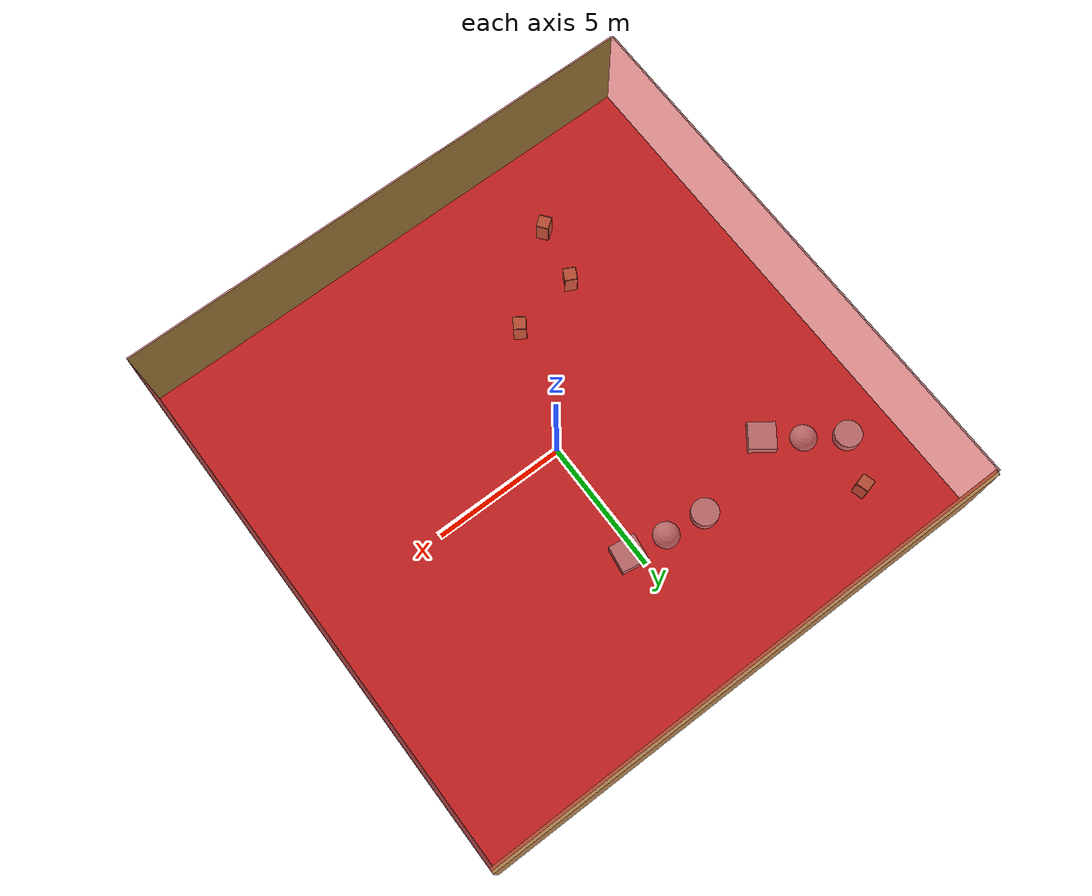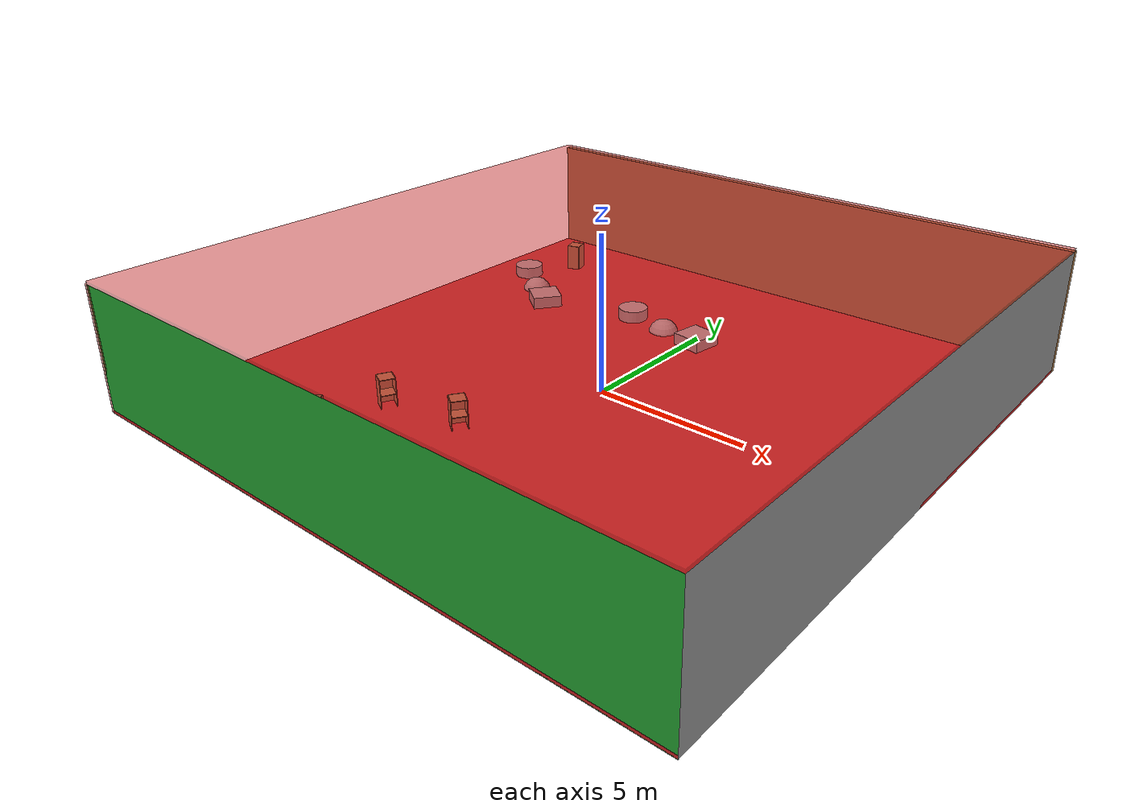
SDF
<sdf version="1.4">
 <world name="default">
  <physics type="ode">
   <max_step_size>0.001</max_step_size>
   <real_time_factor>1</real_time_factor>
   <real_time_update_rate>1000</real_time_update_rate>
   <gravity>0 0 -9.8</gravity>
  </physics>
  <scene><ambient>0.4 0.4 0.4 1</ambient><background>0.7 0.7 0.7 1</background><shadows>1</shadows></scene>
  <model name="Surrounding">
   <static>1</static>
   <link name="Ceiling">
    <collision name="Ceiling_Collision"><geometry><box><size>20 20 0.1</size></box></geometry></collision>
    <visual name="Ceiling_Visual">
     <geometry><box><size>20 20 0.1</size></box></geometry>
     <material>
      <script><uri>file://media/materials/scripts/gazebo.material</uri><name>Gazebo/RedTransparent</name></script>
     </material>
    </visual>
    <pose>0 0 4.05 0 0 0</pose>
   </link>
   <link name="Wall_South">
    <collision name="Wall_South_Collision">
     <geometry><box><size>20 0 4</size></box></geometry>
     <pose>0 0 2 0 -0 0</pose>
    </collision>
    <visual name="Wall_South_Visual">
     <pose>0 0 2 0 -0 0</pose>
     <geometry><box><size>20 0 4</size></box></geometry>
     <material>
      <script><uri>file://media/materials/scripts/gazebo.material</uri><name>Gazebo/Green</name></script>
     </material>
    </visual>
    <velocity_decay><linear>0</linear><angular>0</angular></velocity_decay>
    <pose>0 -10 0 0 -0 0</pose>
   </link>
   <link name="Wall_East">
    <collision name="Wall_21_Collision">
     <geometry><box><size>20 0 4</size></box></geometry>
     <pose>0 0 2 0 -0 0</pose>
    </collision>
    <visual name="Wall_21_Visual">
     <pose>0 0 2 0 -0 0</pose>
     <geometry><box><size>20 0 4</size></box></geometry>
     <material>
      <script><uri>file://media/materials/scripts/gazebo.material</uri><name>Gazebo/Grey</name></script>
     </material>
    </visual>
    <velocity_decay><linear>0</linear><angular>0</angular></velocity_decay>
    <pose>10 0 0 0 -0 1.5708</pose>
   </link>
   <link name="Wall_North">
    <collision name="Wall_22_Collision">
     <geometry><box><size>20 0.2 4</size></box></geometry>
     <pose>0 0 2 0 -0 0</pose>
    </collision>
    <visual name="Wall_22_Visual">
     <pose>0 0 2 0 -0 0</pose>
     <geometry><box><size>20 0.2 4</size></box></geometry>
     <material>
      <script><uri>file://media/materials/scripts/gazebo.material</uri><name>Gazebo/WoodFloor</name></script>
     </material>
    </visual>
    <velocity_decay><linear>0</linear><angular>0</angular></velocity_decay>
    <pose>0 10 0 0 -0 0</pose>
   </link>
   <link name="Wall_West">
    <collision name="Wall_23_Collision">
     <geometry><box><size>20 0.2 4</size></box></geometry>
     <pose>0 0 2 0 -0 0</pose>
    </collision>
    <visual name="Wall_23_Visual">
     <pose>0 0 2 0 -0 0</pose>
     <geometry><box><size>20 0.2 4</size></box></geometry>
     <material>
      <script><uri>file://media/materials/scripts/gazebo.material</uri><name>Gazebo/RedTransparent</name></script>
     </material>
    </visual>
    <velocity_decay><linear>0</linear><angular>0</angular></velocity_decay>
    <pose>-10 0 0 0 0 -1.5708</pose>
   </link>
   <link name="Ground_link">
    <collision name="collision">
     <pose>0 0 .05 0 -0 0</pose>
     <geometry><box><size>20 20 0.1</size></box></geometry>
    </collision>
    <visual name="visual">
     <pose>0 0 .05 0 -0 0</pose>
     <geometry><box><size>20 20 0.1</size></box></geometry>
     <material>
      <script><uri>file://media/materials/scripts/gazebo.material</uri><name>Gazebo/RedGlow</name></script>
     </material>
    </visual>
   </link>
   <static>1</static>
  </model>
  <spherical_coordinates>
   <surface_model>EARTH_WGS84</surface_model>
   <latitude_deg>0</latitude_deg>
   <longitude_deg>0</longitude_deg>
   <elevation>0</elevation>
   <heading_deg>0</heading_deg>
  </spherical_coordinates>
  <light name="lightball_0" type="diffuse">
   <diffuse>0.8 0.8 0.8 1</diffuse>
   <specular>0.2 0.2 0.2 1</specular>
   <attenuation>
    <range>100</range>
    <constant>0.7</constant>
    <linear>0.01</linear>
    <quadratic>0.001</quadratic>
   </attenuation>
   <direction>-0.5 0.1 -0.9</direction>
   <pose>-8.06985148232 -4.03108906985 2.2408728219 0 0 0</pose>
  </light>
  <light name="lightball_1" type="diffuse">
   <diffuse>0.8 0.8 0.8 1</diffuse>
   <specular>0.2 0.2 0.2 1</specular>
   <attenuation>
    <range>100</range>
    <constant>0.7</constant>
    <linear>0.01</linear>
    <quadratic>0.001</quadratic>
   </attenuation>
   <direction>-0.5 0.1 -0.9</direction>
   <pose>4.38856634447 -3.99168389174 0.652357481037 0 0 0</pose>
  </light>
  <light name="lightball_2" type="diffuse">
   <diffuse>0.8 0.8 0.8 1</diffuse>
   <specular>0.2 0.2 0.2 1</specular>
   <attenuation>
    <range>100</range>
    <constant>0.7</constant>
    <linear>0.01</linear>
    <quadratic>0.001</quadratic>
   </attenuation>
   <direction>-0.5 0.1 -0.9</direction>
   <pose>-3.07319081487 9.68539336132 3.32386929371 0 0 0</pose>
  </light>
  <light name="lightball_3" type="diffuse">
   <diffuse>0.8 0.8 0.8 1</diffuse>
   <specular>0.2 0.2 0.2 1</specular>
   <attenuation>
    <range>100</range>
    <constant>0.7</constant>
    <linear>0.01</linear>
    <quadratic>0.001</quadratic>
   </attenuation>
   <direction>-0.5 0.1 -0.9</direction>
   <pose>6.09154039395 -6.8066000034 2.95643699589 0 0 0</pose>
  </light>
  <light name="lightball_4" type="diffuse">
   <diffuse>0.8 0.8 0.8 1</diffuse>
   <specular>0.2 0.2 0.2 1</specular>
   <attenuation>
    <range>100</range>
    <constant>0.7</constant>
    <linear>0.01</linear>
    <quadratic>0.001</quadratic>
   </attenuation>
   <direction>-0.5 0.1 -0.9</direction>
   <pose>-0.249373880013 4.56755238383 0.748091088129 0 0 0</pose>
  </light>
  <light name="lightball_5" type="diffuse">
   <diffuse>0.8 0.8 0.8 1</diffuse>
   <specular>0.2 0.2 0.2 1</specular>
   <attenuation>
    <range>100</range>
    <constant>0.7</constant>
    <linear>0.01</linear>
    <quadratic>0.001</quadratic>
   </attenuation>
   <direction>-0.5 0.1 -0.9</direction>
   <pose>9.76061568107 -7.15803264335 2.80126953264 0 0 0</pose>
  </light>
  <light name="lightball_6" type="diffuse">
   <diffuse>0.8 0.8 0.8 1</diffuse>
   <specular>0.2 0.2 0.2 1</specular>
   <attenuation>
    <range>100</range>
    <constant>0.7</constant>
    <linear>0.01</linear>
    <quadratic>0.001</quadratic>
   </attenuation>
   <direction>-0.5 0.1 -0.9</direction>
   <pose>-5.32067851212 8.74656347826 1.94856631638 0 0 0</pose>
  </light>
  <light name="lightball_7" type="diffuse">
   <diffuse>0.8 0.8 0.8 1</diffuse>
   <specular>0.2 0.2 0.2 1</specular>
   <attenuation>
    <range>100</range>
    <constant>0.7</constant>
    <linear>0.01</linear>
    <quadratic>0.001</quadratic>
   </attenuation>
   <direction>-0.5 0.1 -0.9</direction>
   <pose>5.08950214632 -6.06908594574 2.13806502914 0 0 0</pose>
  </light>
  <light name="lightball_8" type="diffuse">
   <diffuse>0.8 0.8 0.8 1</diffuse>
   <specular>0.2 0.2 0.2 1</specular>
   <attenuation>
    <range>100</range>
    <constant>0.7</constant>
    <linear>0.01</linear>
    <quadratic>0.001</quadratic>
   </attenuation>
   <direction>-0.5 0.1 -0.9</direction>
   <pose>-1.20805903128 -2.09701097918 0.550583263191 0 0 0</pose>
  </light>
  <light name="lightball_9" type="diffuse">
   <diffuse>0.8 0.8 0.8 1</diffuse>
   <specular>0.2 0.2 0.2 1</specular>
   <attenuation>
    <range>100</range>
    <constant>0.7</constant>
    <linear>0.01</linear>
    <quadratic>0.001</quadratic>
   </attenuation>
   <direction>-0.5 0.1 -0.9</direction>
   <pose>3.86992757608 -8.88151063323 2.6571754973 0 0 0</pose>
  </light>
  <include>
   <uri>model://textured_shapes</uri>
   <pose>-7.13273051945 4.84813291641 0 0 0 0.943438704026</pose>
  </include>
  <include><uri>model://cabinet</uri><pose>-7.48242540665 7.46952584134 0 0 0 0.267105869915</pose></include>
  <include><uri>model://cabinet</uri><pose>-4.66294867703 -6.9245378569 0 0 0 2.2180898672</pose></include>
  <include><uri>model://cabinet</uri><pose>-4.16927179674 -4.73348458547 0 0 0 2.6703529564</pose></include>
  <include><uri>model://cabinet</uri><pose>-1.61038675161 -4.31592643677 0 0 0 2.55302066204</pose></include>
  <include>
   <uri>model://textured_shapes</uri>
   <pose>-1.14380846707 4.66634028652 0 0 0 1.41915561294</pose>
  </include>
 </world>
</sdf>

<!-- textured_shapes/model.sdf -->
<sdf version="1.6">
  <model name="textured_shapes">
    <pose>0 0 0.5 0 0 0</pose>
    <link name="box">
      <pose>0 -1.5 0 0 0 0</pose>
      <collision name="collision">
        <geometry>
          <box>
            <size>1 1 1</size>
          </box>
        </geometry>
      </collision>
      <visual name="visual">
        <geometry>
          <box>
            <size>1 1 1</size>
          </box>
        </geometry>
        <material>
          <script>
            <uri>model://../model_source/models/textured_shapes/materials/scripts</uri>
            <uri>model://../model_source/models/textured_shapes/materials/textures</uri>
            <name>TexturedShape/Squares</name>
          </script>
        </material>
      </visual>
    </link>
    <link name="sphere">
      <collision name="collision">
        <geometry>
          <sphere>
            <radius>0.5</radius>
          </sphere>
        </geometry>
      </collision>
      <visual name="visual">
        <geometry>
          <sphere>
            <radius>0.5</radius>
          </sphere>
        </geometry>
        <material>
          <script>
            <uri>model://../model_source/models/textured_shapes/materials/scripts</uri>
            <uri>model://../model_source/models/textured_shapes/materials/textures</uri>
            <name>TexturedShape/Squares</name>
          </script>
        </material>
      </visual>
    </link>
    <link name="cylinder">
      <pose>0 1.5 0 0 0 0</pose>
      <collision name="collision">
        <geometry>
          <cylinder>
            <radius>0.5</radius>
            <length>1</length>
          </cylinder>
        </geometry>
      </collision>
      <visual name="visual">
        <geometry>
          <cylinder>
            <radius>0.5</radius>
            <length>1</length>
          </cylinder>
        </geometry>
        <material>
          <script>
            <uri>model://../model_source/models/textured_shapes/materials/scripts</uri>
            <uri>model://../model_source/models/textured_shapes/materials/textures</uri>
            <name>TexturedShape/Squares</name>
          </script>
        </material>
      </visual>
    </link>
  </model>
</sdf>

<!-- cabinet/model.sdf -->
<sdf version="1.5">
  <model name="cabinet">
    <static>true</static>
    <link name="cabinet_bottom_plate">
      <inertial>
        <pose>0 0 -1 0 0 0</pose>
        <inertia>
          <ixx>2.050000</ixx>
          <ixy>0</ixy>
          <ixz>0</ixz>
          <iyy>2.050000</iyy>
          <iyz>0</iyz>
          <izz>2.050000</izz>
        </inertia>
        <mass>25.000000</mass>
      </inertial>
      <collision name="cabinet_bottom_plate_geom">
        <pose>0 0 0.010000 0 0 0</pose>
        <geometry>
          <box>
            <size>0.450000 0.450000 0.020000</size>
          </box>
        </geometry>
      </collision>
      <visual name="cabinet_bottom_plate_geom_visual">
        <pose>0 0 0.010000 0 0 0</pose>
        <geometry>
          <box>
            <size>0.450000 0.450000 0.020000</size>
          </box>
        </geometry>
        <material>
          <script>
            <uri>model://media/materials/scripts/gazebo.material</uri>
            <name>Gazebo/Wood</name>
          </script>
        </material>
      </visual>
      <collision name="cabinet_bottom_plate_geom_cabinet_back_plate">
        <pose>0.235000 0 0.510000 0 0 0</pose>
        <geometry>
          <box>
            <size>0.020000 0.450000 1.020000</size>
          </box>
        </geometry>
      </collision>
      <visual name="cabinet_bottom_plate_geom_cabinet_back_plate_visual">
        <pose>0.235000 0 0.510000 0 0 0</pose>
        <geometry>
          <box>
            <size>0.020000 0.450000 1.020000</size>
          </box>
        </geometry>
        <material>
          <script>
            <uri>model://media/materials/scripts/gazebo.material</uri>
            <name>Gazebo/Wood</name>
          </script>
        </material>
      </visual>
      <collision name="cabinet_bottom_plate_geom_cabinet_left_plate">
        <pose>0 0.235000 0.510000 0 0 0</pose>
        <geometry>
          <box>
            <size>0.450000 0.020000 1.020000</size>
          </box>
        </geometry>
      </collision>
      <visual name="cabinet_bottom_plate_geom_cabinet_left_plate_visual">
        <pose>0 0.235000 0.510000 0 0 0</pose>
        <geometry>
          <box>
            <size>0.450000 0.020000 1.020000</size>
          </box>
        </geometry>
        <material>
          <script>
            <uri>model://media/materials/scripts/gazebo.material</uri>
            <name>Gazebo/Wood</name>
          </script>
        </material>
      </visual>
      <collision name="cabinet_bottom_plate_geom_cabinet_middle_plate">
        <pose>0 0 0.510000 0 0 0</pose>
        <geometry>
          <box>
            <size>0.450000 0.450000 0.020000</size>
          </box>
        </geometry>
      </collision>
      <visual name="cabinet_bottom_plate_geom_cabinet_middle_plate_visual">
        <pose>0 0 0.510000 0 0 0</pose>
        <geometry>
          <box>
            <size>0.450000 0.450000 0.020000</size>
          </box>
        </geometry>
        <material>
          <script>
            <uri>model://media/materials/scripts/gazebo.material</uri>
            <name>Gazebo/Wood</name>
          </script>
        </material>
      </visual>
      <collision name="cabinet_bottom_plate_geom_cabinet_right_plate">
        <pose>0 -0.235000 0.510000 0 0 0</pose>
        <geometry>
          <box>
            <size>0.450000 0.020000 1.020000</size>
          </box>
        </geometry>
      </collision>
      <visual name="cabinet_bottom_plate_geom_cabinet_right_plate_visual">
        <pose>0 -0.235000 0.510000 0 0 0</pose>
        <geometry>
          <box>
            <size>0.450000 0.020000 1.020000</size>
          </box>
        </geometry>
        <material>
          <script>
            <uri>model://media/materials/scripts/gazebo.material</uri>
            <name>Gazebo/Wood</name>
          </script>
        </material>
      </visual>
      <collision name="cabinet_bottom_plate_geom_cabinet_top_plate">
        <pose>0 0 1.010000 0 0 0</pose>
        <geometry>
          <box>
            <size>0.450000 0.450000 0.020000</size>
          </box>
        </geometry>
      </collision>
      <visual name="cabinet_bottom_plate_geom_cabinet_top_plate_visual">
        <pose>0 0 1.010000 0 0 0</pose>
        <geometry>
          <box>
            <size>0.450000 0.450000 0.020000</size>
          </box>
        </geometry>
        <material>
          <script>
            <uri>model://media/materials/scripts/gazebo.material</uri>
            <name>Gazebo/Wood</name>
          </script>
        </material>
      </visual>
    </link>
  </model>
</sdf>
